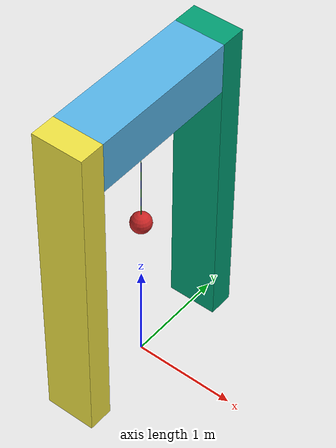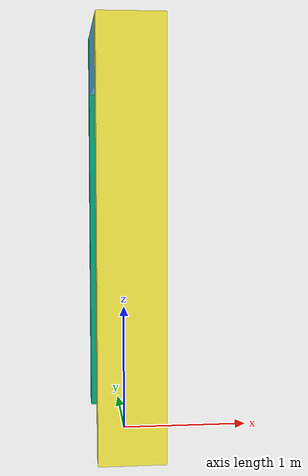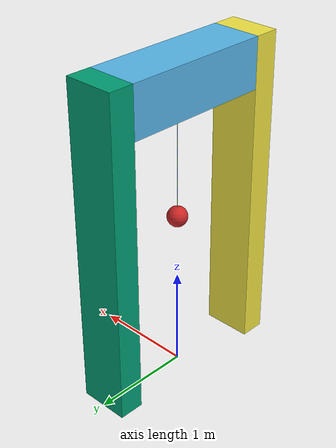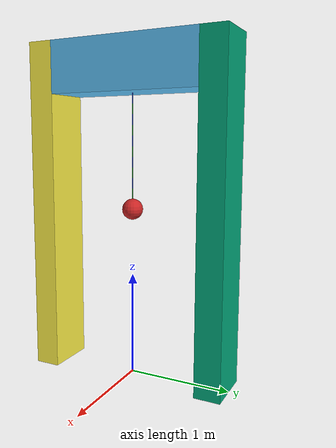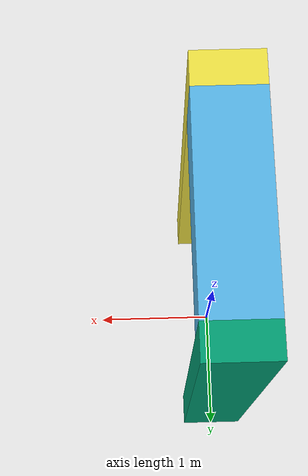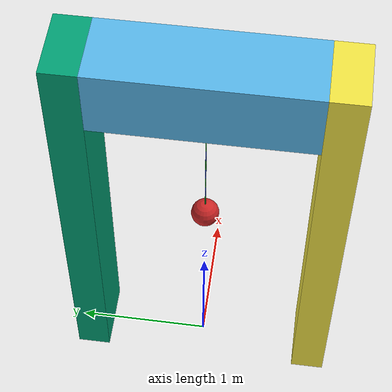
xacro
<?xml version='1.0' encoding='utf-8'?>
<robot xmlns:xacro="http://www.ros.org/wiki/xacro" name="myrobot">
  <xacro:property name="width_1" value="0.004"/>
  <xacro:property name="body_len" value="0.1"/>
  <xacro:property name="box_param" value="0.5"/>
  <xacro:property name="box_param1" value="0.25"/>
  <xacro:property name="spawn_point" value="3.0"/>
  <xacro:property name="radius" value="0.101"/>
  <xacro:property name="small" value="0.005"/>
  <xacro:property name="load_mass" value="2.0"/>
  <xacro:property name="friction" value="0.02"/>
  <xacro:property name="damping1" value="0.5"/>
  <xacro:property name="effort_joint" value="1000"/>
  <xacro:property name="large" value="100"/>
  <xacro:property name="inertia_rope1" value="0.01"/>
  <xacro:property name="inertia_rope2" value="0.02"/>
  <xacro:property name="mass_rope" value="0.1"/>
  <xacro:property name="mass_link" value="0.001"/>
  <xacro:property name="inertia_link" value="0.01"/>
  <xacro:property name="velocity_joint" value="300"/>
  <xacro:property name="load_inertia" value="0.0"/>
  <link name="world"/>
  <link name="base_link">
    <visual>
      <geometry>
        <box size="${box_param} ${3*box_param} ${box_param}"/>
      </geometry>
    </visual>
    <collision>
      <geometry>
        <box size="${box_param} ${3*box_param} ${box_param}"/>
      </geometry>
      <origin rpy="0 0 0" xyz="0 0 ${spawn_point}"/>
    </collision>
    <inertial>
      <mass value="${small}"/>
      <inertia ixx="${small}" ixy="0.0" ixz="0.0" iyy="${small}" iyz="0.0" izz="${small}"/>
      <origin rpy="0 0 0" xyz="0 0 ${spawn_point}"/>
    </inertial>
  </link>
  <link name="leg1">
    <visual>
      <geometry>
        <box size="${box_param} ${box_param1}  ${spawn_point+box_param/2}"/>
      </geometry>
      <origin rpy="0 0 0" xyz="0 0 ${-spawn_point/2}"/>
    </visual>
    <collision>
      <geometry>
        <box size="${box_param} ${box_param1}  ${spawn_point+box_param/2}"/>
      </geometry>
      <origin rpy="0 0 0" xyz="0 0 ${-spawn_point/2}"/>
    </collision>
    <inertial>
      <mass value="${large}"/>
      <inertia ixx="${large}" ixy="0.0" ixz="0.0" iyy="${large}" iyz="0.0" izz="${large}"/>
      <origin rpy="0 0 0" xyz="0 ${3*box_param} ${-spawn_point/2}"/>
    </inertial>
  </link>
  <link name="leg2">
    <visual>
      <geometry>
        <box size="${box_param} ${-box_param1}  ${spawn_point+box_param/2}"/>
      </geometry>
      <origin rpy="0 0 0" xyz="0 0 ${-spawn_point/2}"/>
    </visual>
    <collision>
      <geometry>
        <box size="${box_param} ${-box_param1} ${spawn_point+box_param/2}"/>
      </geometry>
      <origin rpy="0 0 0" xyz="0 0 ${spawn_point/2}"/>
    </collision>
    <inertial>
      <mass value="${large}"/>
      <inertia ixx="${large}" ixy="0.0" ixz="0.0" iyy="${large}" iyz="0.0" izz="${large}"/>
      <origin rpy="0 0 0" xyz="0 ${-3*box_param} ${-spawn_point/2}"/>
    </inertial>
  </link>
  <link name="rope_1">
    <visual>
      <geometry>
        <cylinder length="${body_len}" radius="${width_1}"/>
      </geometry>
      <origin rpy="0.0 0.0 0.0" xyz="0 0 ${-body_len/2}"/>
    </visual>
    <collision>
      <geometry>
        <cylinder length="${body_len}" radius="${width_1}"/>
      </geometry>
      <origin rpy="0.0 0.0 0.0" xyz="0 0 ${-body_len/2}"/>
    </collision>
    <inertial>
      <mass value="${mass_rope}"/>
      <inertia ixx="${inertia_rope1}" ixy="0.0" ixz="0.0" iyy="${inertia_rope1}" iyz="0.0" izz="${inertia_rope2}"/>
      <origin rpy="0.0 0.0 0.0" xyz="0 0 ${-body_len/2}"/>
    </inertial>
  </link>
  <link name="rope_2">
    <visual>
      <geometry>
        <cylinder length="${body_len}" radius="${width_1}"/>
      </geometry>
      <origin rpy="0.0 0.0 0.0" xyz="0 0 ${-body_len/2}"/>
    </visual>
    <collision>
      <geometry>
        <cylinder length="${body_len}" radius="${width_1}"/>
      </geometry>
      <origin rpy="0.0 0.0 0.0" xyz="0 0 ${-body_len/2}"/>
    </collision>
    <inertial>
      <mass value="${mass_rope}"/>
      <inertia ixx="${inertia_rope1}" ixy="0.0" ixz="0.0" iyy="${inertia_rope1}" iyz="0.0" izz="${inertia_rope2}"/>
      <origin rpy="0.0 0.0 0.0" xyz="0 0 ${-body_len/2}"/>
    </inertial>
  </link>
  <link name="rope_3">
    <visual>
      <geometry>
        <cylinder length="${body_len}" radius="${width_1}"/>
      </geometry>
      <origin rpy="0.0 0.0 0.0" xyz="0 0 ${-body_len/2}"/>
    </visual>
    <collision>
      <geometry>
        <cylinder length="${body_len}" radius="${width_1}"/>
      </geometry>
      <origin rpy="0.0 0.0 0.0" xyz="0 0 ${-body_len/2}"/>
    </collision>
    <inertial>
      <mass value="${mass_rope}"/>
      <inertia ixx="${inertia_rope1}" ixy="0.0" ixz="0.0" iyy="${inertia_rope1}" iyz="0.0" izz="${inertia_rope2}"/>
      <origin rpy="0.0 0.0 0.0" xyz="0 0 ${-body_len/2}"/>
    </inertial>
  </link>
  <link name="rope_4">
    <visual>
      <geometry>
        <cylinder length="${body_len}" radius="${width_1}"/>
      </geometry>
      <origin rpy="0.0 0.0 0.0" xyz="0 0 ${-body_len/2}"/>
    </visual>
    <collision>
      <geometry>
        <cylinder length="${body_len}" radius="${width_1}"/>
      </geometry>
      <origin rpy="0.0 0.0 0.0" xyz="0 0 ${-body_len/2}"/>
    </collision>
    <inertial>
      <mass value="${mass_rope}"/>
      <inertia ixx="${inertia_rope1}" ixy="0.0" ixz="0.0" iyy="${inertia_rope1}" iyz="0.0" izz="${inertia_rope2}"/>
      <origin rpy="0.0 0.0 0.0" xyz="0 0 ${-body_len/2}"/>
    </inertial>
  </link>
  <link name="rope_5">
    <visual>
      <geometry>
        <cylinder length="${body_len}" radius="${width_1}"/>
      </geometry>
      <origin rpy="0.0 0.0 0.0" xyz="0 0 ${-body_len/2}"/>
    </visual>
    <collision>
      <geometry>
        <cylinder length="${body_len}" radius="${width_1}"/>
      </geometry>
      <origin rpy="0.0 0.0 0.0" xyz="0 0 ${-body_len/2}"/>
    </collision>
    <inertial>
      <mass value="${mass_rope}"/>
      <inertia ixx="${inertia_rope1}" ixy="0.0" ixz="0.0" iyy="${inertia_rope1}" iyz="0.0" izz="${inertia_rope2}"/>
      <origin rpy="0.0 0.0 0.0" xyz="0 0 ${-body_len/2}"/>
    </inertial>
  </link>
  <link name="rope_6">
    <visual>
      <geometry>
        <cylinder length="${body_len}" radius="${width_1}"/>
      </geometry>
      <origin rpy="0.0 0.0 0.0" xyz="0 0 ${-body_len/2}"/>
    </visual>
    <collision>
      <geometry>
        <cylinder length="${body_len}" radius="${width_1}"/>
      </geometry>
      <origin rpy="0.0 0.0 0.0" xyz="0 0 ${-body_len/2}"/>
    </collision>
    <inertial>
      <mass value="${mass_rope}"/>
      <inertia ixx="${inertia_rope1}" ixy="0.0" ixz="0.0" iyy="${inertia_rope1}" iyz="0.0" izz="${inertia_rope2}"/>
      <origin rpy="0.0 0.0 0.0" xyz="0 0 ${-body_len/2}"/>
    </inertial>
  </link>
  <link name="rope_7">
    <visual>
      <geometry>
        <cylinder length="${body_len}" radius="${width_1}"/>
      </geometry>
      <origin rpy="0.0 0.0 0.0" xyz="0 0 ${-body_len/2}"/>
    </visual>
    <collision>
      <geometry>
        <cylinder length="${body_len}" radius="${width_1}"/>
      </geometry>
      <origin rpy="0.0 0.0 0.0" xyz="0 0 ${-body_len/2}"/>
    </collision>
    <inertial>
      <mass value="${mass_rope}"/>
      <inertia ixx="${inertia_rope1}" ixy="0.0" ixz="0.0" iyy="${inertia_rope1}" iyz="0.0" izz="${inertia_rope2}"/>
      <origin rpy="0.0 0.0 0.0" xyz="0 0 ${-body_len/2}"/>
    </inertial>
  </link>
  <link name="rope_8">
    <visual>
      <geometry>
        <cylinder length="${body_len}" radius="${width_1}"/>
      </geometry>
      <origin rpy="0.0 0.0 0.0" xyz="0 0 ${-body_len/2}"/>
    </visual>
    <collision>
      <geometry>
        <cylinder length="${body_len}" radius="${width_1}"/>
      </geometry>
      <origin rpy="0.0 0.0 0.0" xyz="0 0 ${-body_len/2}"/>
    </collision>
    <inertial>
      <mass value="${mass_rope}"/>
      <inertia ixx="${inertia_rope1}" ixy="0.0" ixz="0.0" iyy="${inertia_rope1}" iyz="0.0" izz="${inertia_rope2}"/>
      <origin rpy="0.0 0.0 0.0" xyz="0 0 ${-body_len/2}"/>
    </inertial>
  </link>
  <link name="rope_9">
    <visual>
      <geometry>
        <cylinder length="${body_len}" radius="${width_1}"/>
      </geometry>
      <origin rpy="0.0 0.0 0.0" xyz="0 0 ${-body_len/2}"/>
    </visual>
    <collision>
      <geometry>
        <cylinder length="${body_len}" radius="${width_1}"/>
      </geometry>
      <origin rpy="0.0 0.0 0.0" xyz="0 0 ${-body_len/2}"/>
    </collision>
    <inertial>
      <mass value="${mass_rope}"/>
      <inertia ixx="${inertia_rope1}" ixy="0.0" ixz="0.0" iyy="${inertia_rope1}" iyz="0.0" izz="${inertia_rope2}"/>
      <origin rpy="0.0 0.0 0.0" xyz="0 0 ${-body_len/2}"/>
    </inertial>
  </link>
  <link name="rope_10">
    <visual>
      <geometry>
        <cylinder length="${body_len}" radius="${width_1}"/>
      </geometry>
      <origin rpy="0.0 0.0 0.0" xyz="0 0 ${-body_len/2}"/>
    </visual>
    <collision>
      <geometry>
        <cylinder length="${body_len}" radius="${width_1}"/>
      </geometry>
      <origin rpy="0.0 0.0 0.0" xyz="0 0 ${-body_len/2}"/>
    </collision>
    <inertial>
      <mass value="${mass_rope}"/>
      <inertia ixx="${inertia_rope1}" ixy="0.0" ixz="0.0" iyy="${inertia_rope1}" iyz="0.0" izz="${inertia_rope2}"/>
      <origin rpy="0.0 0.0 0.0" xyz="0 0 ${-body_len/2}"/>
    </inertial>
  </link>
  <link name="load">
    <visual>
      <geometry>
        <sphere radius="${radius}"/>
      </geometry>
      <origin rpy="0.0 0.0 0.0" xyz="0 0 ${-radius}"/>
    </visual>
    <collision>
      <geometry>
        <sphere radius="${radius}"/>
      </geometry>
      <origin rpy="0.0 0.0 0.0" xyz="0 0 ${-radius}"/>
    </collision>
    <inertial>
      <mass value="${load_mass}"/>
      <inertia ixx="${load_inertia}" ixy="0.0" ixz="0.0" iyy="${load_inertia}" iyz="0.0" izz="${load_inertia}"/>
      <origin rpy="0.0 0.0 0.0" xyz="0 0 ${-radius}"/>
    </inertial>
  </link>
  <joint name="world_base_link" type="fixed">
    <parent link="world"/>
    <child link="base_link"/>
    <origin rpy="0.0 0.0 0.0" xyz="0 0 ${spawn_point}"/>
  </joint>
  <joint name="leg1_base_link" type="fixed">
    <parent link="base_link"/>
    <child link="leg1"/>
    <origin xyz="0 ${3*box_param/2+box_param1/2} ${box_param/4}"/>
  </joint>
  <joint name="leg2_base_link" type="fixed">
    <parent link="base_link"/>
    <child link="leg2"/>
    <origin xyz="0 ${-(3*box_param/2+box_param1/2)} ${box_param/4}"/>
  </joint>
  <link name="rope1Theta">
    <inertial>
      <mass value="${mass_link}"/>
      <inertia ixx="${inertia_link}" ixy="0.0" ixz="0.0" iyy="${inertia_link}" iyz="0.0" izz="${inertia_link}"/>
    </inertial>
  </link>
  <link name="rope1Psi">
    <inertial>
      <mass value="${mass_link}"/>
      <inertia ixx="${inertia_link}" ixy="0.0" ixz="0.0" iyy="${inertia_link}" iyz="0.0" izz="${inertia_link}"/>
    </inertial>
  </link>
  <joint name="base_link_to_rope1Psi" type="revolute">
    <parent link="base_link"/>
    <child link="rope1Psi"/>
    <origin rpy="0.0 0.0 0.0" xyz="0 0 ${-box_param/2}"/>
    <axis xyz="0 0 1"/>
    <dynamics damping="${damping1}" friction="${friction}"/>
    <limit effort="${effort_joint}" lower="${-pi/2}" upper="${pi/2}" velocity="${velocity_joint}"/>
  </joint>
  <joint name="rope1Psi_to_rope1Theta" type="revolute">
    <parent link="rope1Psi"/>
    <child link="rope1Theta"/>
    <axis xyz="0 1 0"/>
    <dynamics damping="${damping1}" friction="${friction}"/>
    <limit effort="${effort_joint}" lower="${-pi/2}" upper="${pi/2}" velocity="${velocity_joint}"/>
  </joint>
  <joint name="rope1Theta_to_rope_1" type="revolute">
    <parent link="rope1Theta"/>
    <child link="rope_1"/>
    <axis xyz="1 0 0"/>
    <dynamics damping="${damping1}" friction="${friction}"/>
    <limit effort="${effort_joint}" lower="${-pi/16}" upper="${pi/16}" velocity="${velocity_joint}"/>
  </joint>
  <link name="rope2Theta">
    <inertial>
      <mass value="${mass_link}"/>
      <inertia ixx="${inertia_link}" ixy="0.0" ixz="0.0" iyy="${inertia_link}" iyz="0.0" izz="${inertia_link}"/>
    </inertial>
  </link>
  <link name="rope2Psi">
    <inertial>
      <mass value="${mass_link}"/>
      <inertia ixx="${inertia_link}" ixy="0.0" ixz="0.0" iyy="${inertia_link}" iyz="0.0" izz="${inertia_link}"/>
    </inertial>
  </link>
  <joint name="rope_1_to_rope2Psi" type="revolute">
    <parent link="rope_1"/>
    <child link="rope2Psi"/>
    <origin rpy="0.0 0.0 0.0" xyz="0 0 ${-body_len}"/>
    <axis xyz="0 0 1"/>
    <dynamics damping="${damping1}" friction="${friction}"/>
    <limit effort="${effort_joint}" lower="${-pi/2}" upper="${pi/2}" velocity="${velocity_joint}"/>
  </joint>
  <joint name="rope2Psi_to_rope2Theta" type="revolute">
    <parent link="rope2Psi"/>
    <child link="rope2Theta"/>
    <axis xyz="0 1 0"/>
    <dynamics damping="${damping1}" friction="${friction}"/>
    <limit effort="${effort_joint}" lower="${-pi/2}" upper="${pi/2}" velocity="${velocity_joint}"/>
  </joint>
  <joint name="rope2Theta_to_rope_2" type="revolute">
    <parent link="rope2Theta"/>
    <child link="rope_2"/>
    <axis xyz="1 0 0"/>
    <dynamics damping="${damping1}" friction="${friction}"/>
    <limit effort="${effort_joint}" lower="${-pi/16}" upper="${pi/16}" velocity="${velocity_joint}"/>
  </joint>
  <link name="rope3Theta">
    <inertial>
      <mass value="${mass_link}"/>
      <inertia ixx="${inertia_link}" ixy="0.0" ixz="0.0" iyy="${inertia_link}" iyz="0.0" izz="${inertia_link}"/>
    </inertial>
  </link>
  <link name="rope3Psi">
    <inertial>
      <mass value="${mass_link}"/>
      <inertia ixx="${inertia_link}" ixy="0.0" ixz="0.0" iyy="${inertia_link}" iyz="0.0" izz="${inertia_link}"/>
    </inertial>
  </link>
  <joint name="rope_2_to_rope3Psi" type="revolute">
    <parent link="rope_2"/>
    <child link="rope3Psi"/>
    <origin rpy="0.0 0.0 0.0" xyz="0 0 ${-body_len}"/>
    <axis xyz="0 0 1"/>
    <dynamics damping="${damping1}" friction="${friction}"/>
    <limit effort="${effort_joint}" lower="${-pi/2}" upper="${pi/2}" velocity="${velocity_joint}"/>
  </joint>
  <joint name="rope3Psi_to_rope3Theta" type="revolute">
    <parent link="rope3Psi"/>
    <child link="rope3Theta"/>
    <axis xyz="0 1 0"/>
    <dynamics damping="${damping1}" friction="${friction}"/>
    <limit effort="${effort_joint}" lower="${-pi/2}" upper="${pi/2}" velocity="${velocity_joint}"/>
  </joint>
  <joint name="rope3Theta_to_rope_3" type="revolute">
    <parent link="rope3Theta"/>
    <child link="rope_3"/>
    <axis xyz="1 0 0"/>
    <dynamics damping="${damping1}" friction="${friction}"/>
    <limit effort="${effort_joint}" lower="${-pi/16}" upper="${pi/16}" velocity="${velocity_joint}"/>
  </joint>
  <link name="rope4Theta">
    <inertial>
      <mass value="${mass_link}"/>
      <inertia ixx="${inertia_link}" ixy="0.0" ixz="0.0" iyy="${inertia_link}" iyz="0.0" izz="${inertia_link}"/>
    </inertial>
  </link>
  <link name="rope4Psi">
    <inertial>
      <mass value="${mass_link}"/>
      <inertia ixx="${inertia_link}" ixy="0.0" ixz="0.0" iyy="${inertia_link}" iyz="0.0" izz="${inertia_link}"/>
    </inertial>
  </link>
  <joint name="rope_3_to_rope4Psi" type="revolute">
    <parent link="rope_3"/>
    <child link="rope4Psi"/>
    <origin rpy="0.0 0.0 0.0" xyz="0 0 ${-body_len}"/>
    <axis xyz="0 0 1"/>
    <dynamics damping="${damping1}" friction="${friction}"/>
    <limit effort="${effort_joint}" lower="${-pi/2}" upper="${pi/2}" velocity="${velocity_joint}"/>
  </joint>
  <joint name="rope4Psi_to_rope4Theta" type="revolute">
    <parent link="rope4Psi"/>
    <child link="rope4Theta"/>
    <axis xyz="0 1 0"/>
    <dynamics damping="${damping1}" friction="${friction}"/>
    <limit effort="${effort_joint}" lower="${-pi/2}" upper="${pi/2}" velocity="${velocity_joint}"/>
  </joint>
  <joint name="rope4Theta_to_rope_4" type="revolute">
    <parent link="rope4Theta"/>
    <child link="rope_4"/>
    <axis xyz="1 0 0"/>
    <dynamics damping="${damping1}" friction="${friction}"/>
    <limit effort="${effort_joint}" lower="${-pi/16}" upper="${pi/16}" velocity="${velocity_joint}"/>
  </joint>
  <link name="rope5Theta">
    <inertial>
      <mass value="${mass_link}"/>
      <inertia ixx="${inertia_link}" ixy="0.0" ixz="0.0" iyy="${inertia_link}" iyz="0.0" izz="${inertia_link}"/>
    </inertial>
  </link>
  <link name="rope5Psi">
    <inertial>
      <mass value="${mass_link}"/>
      <inertia ixx="${inertia_link}" ixy="0.0" ixz="0.0" iyy="${inertia_link}" iyz="0.0" izz="${inertia_link}"/>
    </inertial>
  </link>
  <joint name="rope_4_to_rope5Psi" type="revolute">
    <parent link="rope_4"/>
    <child link="rope5Psi"/>
    <origin rpy="0.0 0.0 0.0" xyz="0 0 ${-body_len}"/>
    <axis xyz="0 0 1"/>
    <dynamics damping="${damping1}" friction="${friction}"/>
    <limit effort="${effort_joint}" lower="${-pi/2}" upper="${pi/2}" velocity="${velocity_joint}"/>
  </joint>
  <joint name="rope5Psi_to_rope5Theta" type="revolute">
    <parent link="rope5Psi"/>
    <child link="rope5Theta"/>
    <axis xyz="0 1 0"/>
    <dynamics damping="${damping1}" friction="${friction}"/>
    <limit effort="${effort_joint}" lower="${-pi/2}" upper="${pi/2}" velocity="${velocity_joint}"/>
  </joint>
  <joint name="rope5Theta_to_rope_5" type="revolute">
    <parent link="rope5Theta"/>
    <child link="rope_5"/>
    <axis xyz="1 0 0"/>
    <dynamics damping="${damping1}" friction="${friction}"/>
    <limit effort="${effort_joint}" lower="${-pi/16}" upper="${pi/16}" velocity="${velocity_joint}"/>
  </joint>
  <link name="rope6Theta">
    <inertial>
      <mass value="${mass_link}"/>
      <inertia ixx="${inertia_link}" ixy="0.0" ixz="0.0" iyy="${inertia_link}" iyz="0.0" izz="${inertia_link}"/>
    </inertial>
  </link>
  <link name="rope6Psi">
    <inertial>
      <mass value="${mass_link}"/>
      <inertia ixx="${inertia_link}" ixy="0.0" ixz="0.0" iyy="${inertia_link}" iyz="0.0" izz="${inertia_link}"/>
    </inertial>
  </link>
  <joint name="rope_5_to_rope6Psi" type="revolute">
    <parent link="rope_5"/>
    <child link="rope6Psi"/>
    <origin rpy="0.0 0.0 0.0" xyz="0 0 ${-body_len}"/>
    <axis xyz="0 0 1"/>
    <dynamics damping="${damping1}" friction="${friction}"/>
    <limit effort="${effort_joint}" lower="${-pi/2}" upper="${pi/2}" velocity="${velocity_joint}"/>
  </joint>
  <joint name="rope6Psi_to_rope6Theta" type="revolute">
    <parent link="rope6Psi"/>
    <child link="rope6Theta"/>
    <axis xyz="0 1 0"/>
    <dynamics damping="${damping1}" friction="${friction}"/>
    <limit effort="${effort_joint}" lower="${-pi/2}" upper="${pi/2}" velocity="${velocity_joint}"/>
  </joint>
  <joint name="rope6Theta_to_rope_6" type="revolute">
    <parent link="rope6Theta"/>
    <child link="rope_6"/>
    <axis xyz="1 0 0"/>
    <dynamics damping="${damping1}" friction="${friction}"/>
    <limit effort="${effort_joint}" lower="${-pi/16}" upper="${pi/16}" velocity="${velocity_joint}"/>
  </joint>
  <link name="rope7Theta">
    <inertial>
      <mass value="${mass_link}"/>
      <inertia ixx="${inertia_link}" ixy="0.0" ixz="0.0" iyy="${inertia_link}" iyz="0.0" izz="${inertia_link}"/>
    </inertial>
  </link>
  <link name="rope7Psi">
    <inertial>
      <mass value="${mass_link}"/>
      <inertia ixx="${inertia_link}" ixy="0.0" ixz="0.0" iyy="${inertia_link}" iyz="0.0" izz="${inertia_link}"/>
    </inertial>
  </link>
  <joint name="rope_6_to_rope7Psi" type="revolute">
    <parent link="rope_6"/>
    <child link="rope7Psi"/>
    <origin rpy="0.0 0.0 0.0" xyz="0 0 ${-body_len}"/>
    <axis xyz="0 0 1"/>
    <dynamics damping="${damping1}" friction="${friction}"/>
    <limit effort="${effort_joint}" lower="${-pi/2}" upper="${pi/2}" velocity="${velocity_joint}"/>
  </joint>
  <joint name="rope7Psi_to_rope7Theta" type="revolute">
    <parent link="rope7Psi"/>
    <child link="rope7Theta"/>
    <axis xyz="0 1 0"/>
    <dynamics damping="${damping1}" friction="${friction}"/>
    <limit effort="${effort_joint}" lower="${-pi/2}" upper="${pi/2}" velocity="${velocity_joint}"/>
  </joint>
  <joint name="rope7Theta_to_rope_7" type="revolute">
    <parent link="rope7Theta"/>
    <child link="rope_7"/>
    <axis xyz="1 0 0"/>
    <dynamics damping="${damping1}" friction="${friction}"/>
    <limit effort="${effort_joint}" lower="${-pi/16}" upper="${pi/16}" velocity="${velocity_joint}"/>
  </joint>
  <link name="rope8Theta">
    <inertial>
      <mass value="${mass_link}"/>
      <inertia ixx="${inertia_link}" ixy="0.0" ixz="0.0" iyy="${inertia_link}" iyz="0.0" izz="${inertia_link}"/>
    </inertial>
  </link>
  <link name="rope8Psi">
    <inertial>
      <mass value="${mass_link}"/>
      <inertia ixx="${inertia_link}" ixy="0.0" ixz="0.0" iyy="${inertia_link}" iyz="0.0" izz="${inertia_link}"/>
    </inertial>
  </link>
  <joint name="rope_7_to_rope8Psi" type="revolute">
    <parent link="rope_7"/>
    <child link="rope8Psi"/>
    <origin rpy="0.0 0.0 0.0" xyz="0 0 ${-body_len}"/>
    <axis xyz="0 0 1"/>
    <dynamics damping="${damping1}" friction="${friction}"/>
    <limit effort="${effort_joint}" lower="${-pi/2}" upper="${pi/2}" velocity="${velocity_joint}"/>
  </joint>
  <joint name="rope8Psi_to_rope8Theta" type="revolute">
    <parent link="rope8Psi"/>
    <child link="rope8Theta"/>
    <axis xyz="0 1 0"/>
    <dynamics damping="${damping1}" friction="${friction}"/>
    <limit effort="${effort_joint}" lower="${-pi/2}" upper="${pi/2}" velocity="${velocity_joint}"/>
  </joint>
  <joint name="rope8Theta_to_rope_8" type="revolute">
    <parent link="rope8Theta"/>
    <child link="rope_8"/>
    <axis xyz="1 0 0"/>
    <dynamics damping="${damping1}" friction="${friction}"/>
    <limit effort="${effort_joint}" lower="${-pi/16}" upper="${pi/16}" velocity="${velocity_joint}"/>
  </joint>
  <link name="rope9Theta">
    <inertial>
      <mass value="${mass_link}"/>
      <inertia ixx="${inertia_link}" ixy="0.0" ixz="0.0" iyy="${inertia_link}" iyz="0.0" izz="${inertia_link}"/>
    </inertial>
  </link>
  <link name="rope9Psi">
    <inertial>
      <mass value="${mass_link}"/>
      <inertia ixx="${inertia_link}" ixy="0.0" ixz="0.0" iyy="${inertia_link}" iyz="0.0" izz="${inertia_link}"/>
    </inertial>
  </link>
  <joint name="rope_8_to_rope9Psi" type="revolute">
    <parent link="rope_8"/>
    <child link="rope9Psi"/>
    <origin rpy="0.0 0.0 0.0" xyz="0 0 ${-body_len}"/>
    <axis xyz="0 0 1"/>
    <dynamics damping="${damping1}" friction="${friction}"/>
    <limit effort="${effort_joint}" lower="${-pi/2}" upper="${pi/2}" velocity="${velocity_joint}"/>
  </joint>
  <joint name="rope9Psi_to_rope9Theta" type="revolute">
    <parent link="rope9Psi"/>
    <child link="rope9Theta"/>
    <axis xyz="0 1 0"/>
    <dynamics damping="${damping1}" friction="${friction}"/>
    <limit effort="${effort_joint}" lower="${-pi/2}" upper="${pi/2}" velocity="${velocity_joint}"/>
  </joint>
  <joint name="rope9Theta_to_rope_9" type="revolute">
    <parent link="rope9Theta"/>
    <child link="rope_9"/>
    <axis xyz="1 0 0"/>
    <dynamics damping="${damping1}" friction="${friction}"/>
    <limit effort="${effort_joint}" lower="${-pi/16}" upper="${pi/16}" velocity="${velocity_joint}"/>
  </joint>
  <link name="rope10Theta">
    <inertial>
      <mass value="${mass_link}"/>
      <inertia ixx="${inertia_link}" ixy="0.0" ixz="0.0" iyy="${inertia_link}" iyz="0.0" izz="${inertia_link}"/>
    </inertial>
  </link>
  <link name="rope10Psi">
    <inertial>
      <mass value="${mass_link}"/>
      <inertia ixx="${inertia_link}" ixy="0.0" ixz="0.0" iyy="${inertia_link}" iyz="0.0" izz="${inertia_link}"/>
    </inertial>
  </link>
  <joint name="rope_9_to_rope10Psi" type="revolute">
    <parent link="rope_9"/>
    <child link="rope10Psi"/>
    <origin rpy="0.0 0.0 0.0" xyz="0 0 ${-body_len}"/>
    <axis xyz="0 0 1"/>
    <dynamics damping="${damping1}" friction="${friction}"/>
    <limit effort="${effort_joint}" lower="${-pi/2}" upper="${pi/2}" velocity="${velocity_joint}"/>
  </joint>
  <joint name="rope10Psi_to_rope10Theta" type="revolute">
    <parent link="rope10Psi"/>
    <child link="rope10Theta"/>
    <axis xyz="0 1 0"/>
    <dynamics damping="${damping1}" friction="${friction}"/>
    <limit effort="${effort_joint}" lower="${-pi/2}" upper="${pi/2}" velocity="${velocity_joint}"/>
  </joint>
  <joint name="rope10Theta_to_rope_10" type="revolute">
    <parent link="rope10Theta"/>
    <child link="rope_10"/>
    <axis xyz="1 0 0"/>
    <dynamics damping="${damping1}" friction="${friction}"/>
    <limit effort="${effort_joint}" lower="${-pi/16}" upper="${pi/16}" velocity="${velocity_joint}"/>
  </joint>
  <link name="rope11Theta">
    <inertial>
      <mass value="${mass_link}"/>
      <inertia ixx="${inertia_link}" ixy="0.0" ixz="0.0" iyy="${inertia_link}" iyz="0.0" izz="${inertia_link}"/>
    </inertial>
  </link>
  <link name="rope11Psi">
    <inertial>
      <mass value="${mass_link}"/>
      <inertia ixx="${inertia_link}" ixy="0.0" ixz="0.0" iyy="${inertia_link}" iyz="0.0" izz="${inertia_link}"/>
    </inertial>
  </link>
  <joint name="rope_10_to_rope11Psi" type="revolute">
    <parent link="rope_10"/>
    <child link="rope11Psi"/>
    <origin rpy="0.0 0.0 0.0" xyz="0 0 ${-body_len}"/>
    <axis xyz="0 0 1"/>
    <dynamics damping="${damping1}" friction="${friction}"/>
    <limit effort="${effort_joint}" lower="${-pi/2}" upper="${pi/2}" velocity="${velocity_joint}"/>
  </joint>
  <joint name="rope11Psi_to_rope11Theta" type="revolute">
    <parent link="rope11Psi"/>
    <child link="rope11Theta"/>
    <axis xyz="0 1 0"/>
    <dynamics damping="${damping1}" friction="${friction}"/>
    <limit effort="${effort_joint}" lower="${-pi/2}" upper="${pi/2}" velocity="${velocity_joint}"/>
  </joint>
  <joint name="rope11Theta_to_load" type="revolute">
    <parent link="rope11Theta"/>
    <child link="load"/>
    <axis xyz="1 0 0"/>
    <dynamics damping="${damping1}" friction="${friction}"/>
    <limit effort="${effort_joint}" lower="${-pi/16}" upper="${pi/16}" velocity="${velocity_joint}"/>
  </joint>
  <gazebo reference="rope_1">
    <material>Gazebo/Blue</material>
  </gazebo>
  <gazebo reference="rope_2">
    <material>Gazebo/Green</material>
  </gazebo>
  <gazebo reference="rope_3">
    <material>Gazebo/Blue</material>
  </gazebo>
  <gazebo reference="rope_4">
    <material>Gazebo/Green</material>
  </gazebo>
  <gazebo reference="rope_5">
    <material>Gazebo/Blue</material>
  </gazebo>
  <gazebo reference="rope_6">
    <material>Gazebo/Green</material>
  </gazebo>
  <gazebo reference="rope_7">
    <material>Gazebo/Blue</material>
  </gazebo>
  <gazebo reference="rope_8">
    <material>Gazebo/Green</material>
  </gazebo>
  <gazebo reference="rope_9">
    <material>Gazebo/Blue</material>
  </gazebo>
  <gazebo reference="rope_10">
    <material>Gazebo/Green</material>
  </gazebo>
  <gazebo reference="load">
    <material>Gazebo/Red</material>
  </gazebo>
</robot>
